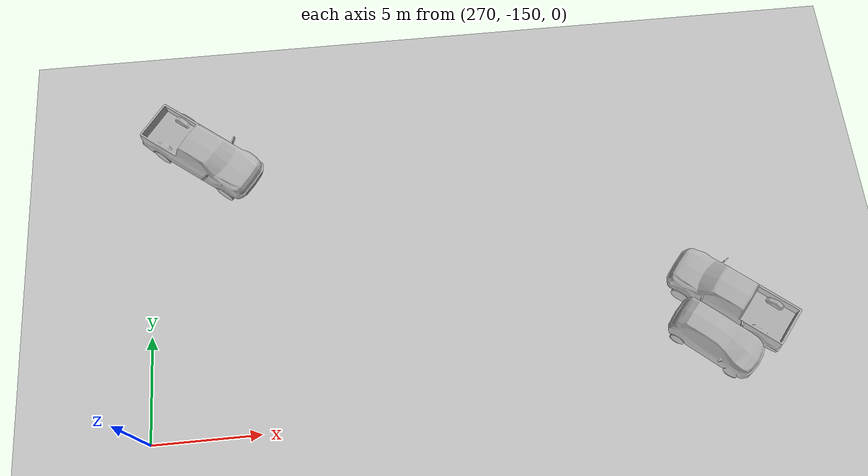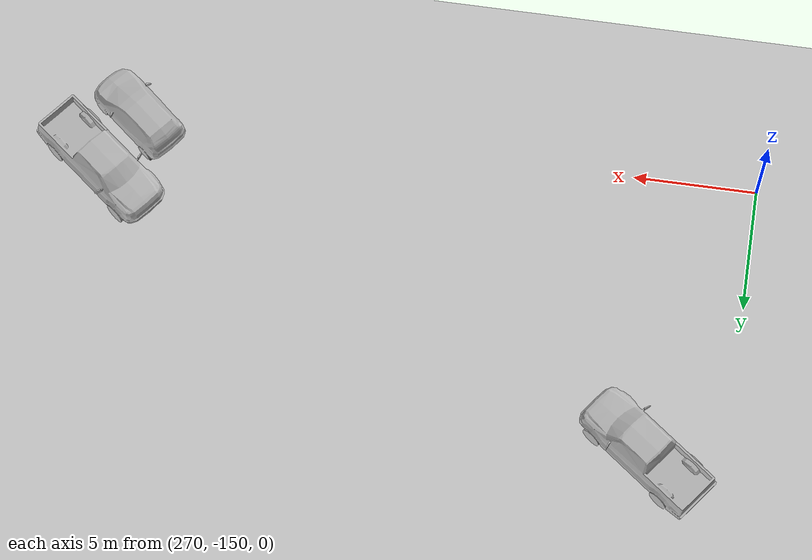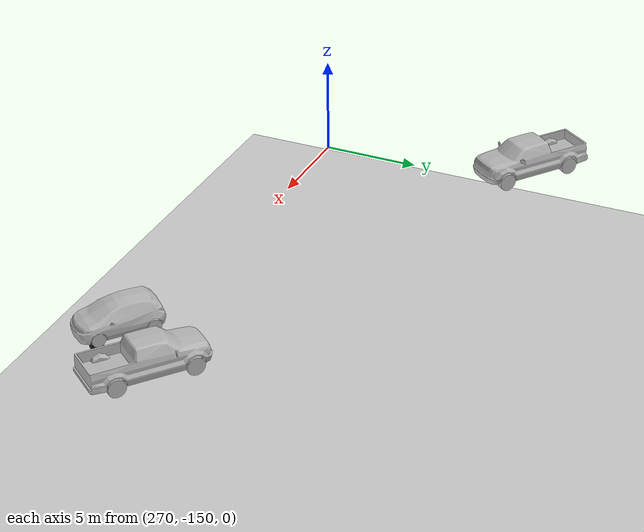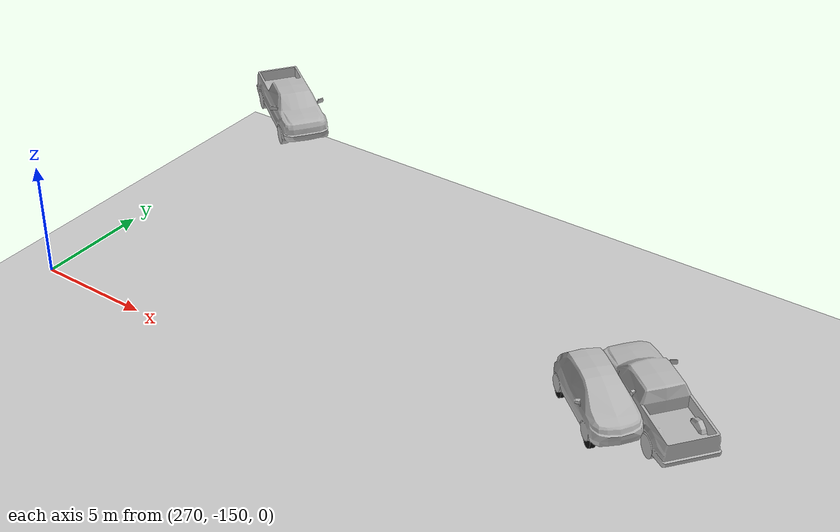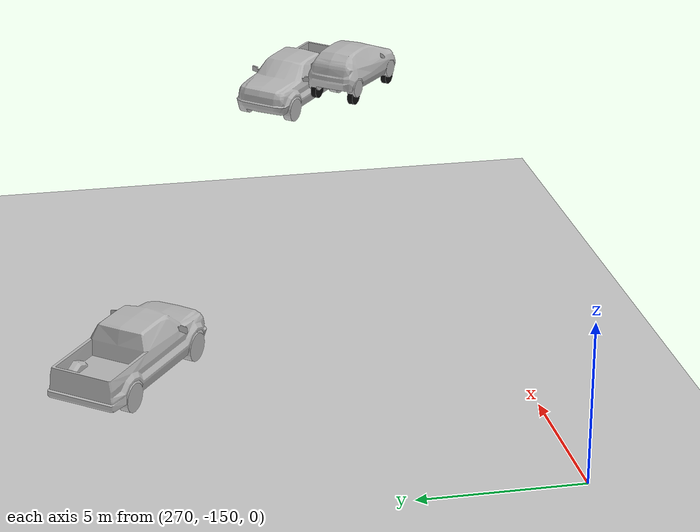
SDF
<sdf version="1.9">
 <world name="default">
  <physics type="ode">
   <max_step_size>0.004</max_step_size>
   <real_time_factor>1.0</real_time_factor>
   <real_time_update_rate>250</real_time_update_rate>
  </physics>
  <plugin name="gz::sim::systems::Physics" filename="gz-sim-physics-system"/>
  <plugin name="gz::sim::systems::UserCommands" filename="gz-sim-user-commands-system"/>
  <plugin name="gz::sim::systems::SceneBroadcaster" filename="gz-sim-scene-broadcaster-system"/>
  <plugin name="gz::sim::systems::Contact" filename="gz-sim-contact-system"/>
  <plugin name="gz::sim::systems::Imu" filename="gz-sim-imu-system"/>
  <plugin name="gz::sim::systems::AirPressure" filename="gz-sim-air-pressure-system"/>
  <plugin name="gz::sim::systems::Magnetometer" filename="gz-sim-magnetometer-system"/>
  <plugin name="gz::sim::systems::ApplyLinkWrench" filename="gz-sim-apply-link-wrench-system"/>
  <plugin name="gz::sim::systems::NavSat" filename="gz-sim-navsat-system"/>
  <plugin name="gz::sim::systems::Sensors" filename="gz-sim-sensors-system">
   <render_engine>ogre2</render_engine>
  </plugin>
  <plugin name="gz::sim::systems::Thermal" filename="gz-sim-thermal-system"/>
  <gravity>0 0 -9.8</gravity>
  <magnetic_field>6e-06 2.3e-05 -4.2e-05</magnetic_field>
  <atmosphere type="adiabatic"/>
  <scene>
   <grid>false</grid>
   <ambient>0.4 0.4 0.4 1</ambient>
   <background>0.7 0.7 0.7 1</background>
   <shadows>true</shadows>
  </scene>
  <model name="ground_plane">
   <static>true</static>
   <link name="link">
    <collision name="collision">
     <geometry><plane><normal>0 0 1</normal><size>1 1</size></plane></geometry>
    </collision>
    <visual name="visual">
     <geometry><plane><normal>0 0 1</normal><size>100 100</size></plane></geometry>
     <material>
      <ambient>0.8 0.8 0.8 1</ambient>
      <diffuse>0.8 0.8 0.8 1</diffuse>
      <specular>0.8 0.8 0.8 1</specular>
     </material>
    </visual>
    <inertial>
     <mass>1</mass>
     <inertia><ixx>1</ixx><ixy>0</ixy><ixz>0</ixz><iyy>1</iyy><iyz>0</iyz><izz>1</izz></inertia>
    </inertial>
   </link>
   <pose>0 0 -5 0 -0 0</pose>
  </model>
  <light name="sunUTC" type="directional">
   <pose>0 0 500 0 -0 0</pose>
   <intensity>1</intensity>
   <direction>0.001 0.625 -0.78</direction>
   <diffuse>0.904 0.904 0.904 1</diffuse>
   <specular>0.271 0.271 0.271 1</specular>
   <attenuation><range>2000</range><linear>0</linear><constant>1</constant><quadratic>0</quadratic></attenuation>
   <spot><inner_angle>0</inner_angle><outer_angle>0</outer_angle><falloff>0</falloff></spot>
  </light>
  <spherical_coordinates>
   <surface_model>EARTH_WGS84</surface_model>
   <world_frame_orientation>ENU</world_frame_orientation>
   <latitude_deg>47.397971057728974</latitude_deg>
   <longitude_deg>8.546163739800146</longitude_deg>
   <elevation>0</elevation>
  </spherical_coordinates>
  <include>
   <pose>294.55 -148.30 3.5 0 0 -0.7</pose>
   <uri>model://hatchback_blue</uri>
   <name>hatchback_blue_1</name>
  </include>
  <include><pose>273.43 -137.65 2.86 0.02 0 -0.65</pose><uri>model://pickup</uri><name>pickup_1</name></include>
  <include>
   <pose>295.96 -146.5 2.48 -0.019 -0.008 2.46</pose>
   <uri>model://pickup</uri>
   <name>pickup_2</name>
  </include>
 </world>
</sdf>

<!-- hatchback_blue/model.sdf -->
<sdf version="1.6">
  <model name="hatchback_blue">

    <!-- ==================== CHASSIS ==================== -->
    <link name="chassis">
      <inertial>
        <mass>800</mass>
        <pose>0.34 0 0.5 0 0 0</pose>
        <inertia>
          <ixx>200</ixx> <ixy>0</ixy> <ixz>0</ixz>
          <iyy>800</iyy> <iyz>0</iyz>
          <izz>800</izz>
        </inertia>
      </inertial>
      <visual name="visual">
        <pose>0 0 0 0 0 1.57079632679</pose>
        <geometry>
          <mesh>
            <scale>0.0254 0.0254 0.0254</scale>
            <uri>model://hatchback_blue/meshes/hatchback.obj</uri>
          </mesh>
        </geometry>
      </visual>
      <collision name="collision">
        <pose>0.34 0 0.5 0 0 0</pose>
        <geometry>
          <box><size>3.6 1.8 1.0</size></box>
        </geometry>
      </collision>

      <!-- Underbody engine/exhaust heat — visible in thermal as a hot
           region below the car. Thin box spanning the undercarriage. -->
      <visual name="underbody_heat">
        <pose>0.2 0 0.08 0 0 0</pose>
        <geometry>
          <box><size>2.8 1.4 0.05</size></box>
        </geometry>
        <material>
          <ambient>0.02 0.02 0.02 1</ambient>
          <diffuse>0.02 0.02 0.02 1</diffuse>
        </material>
        <transparency>1.0</transparency>
      </visual>
    </link>

    <!-- ==================== FORWARD-FACING CAMERA ==================== -->
    <link name="camera_link">
      <pose>1.2 0 1.2 0 0.3 0</pose>
      <inertial>
        <mass>0.1</mass>
        <inertia>
          <ixx>0.001</ixx><ixy>0</ixy><ixz>0</ixz>
          <iyy>0.001</iyy><iyz>0</iyz><izz>0.001</izz>
        </inertia>
      </inertial>
      <sensor name="front_camera" type="camera">
        <always_on>1</always_on>
        <update_rate>15</update_rate>
        <visualize>true</visualize>
        <topic>car/camera</topic>
        <camera>
          <horizontal_fov>2.094</horizontal_fov>
          <image>
            <width>640</width>
            <height>480</height>
            <format>R8G8B8</format>
          </image>
          <clip>
            <near>0.1</near>
            <far>200</far>
          </clip>
        </camera>
      </sensor>
    </link>

    <joint name="camera_joint" type="fixed">
      <parent>chassis</parent>
      <child>camera_link</child>
    </joint>

    <!-- ==================== STEERING LINKS ==================== -->
    <link name="front_left_steering_link">
      <pose>1.6 0.75 0 0 0 0</pose>
      <inertial>
        <mass>1.0</mass>
        <inertia>
          <ixx>0.01</ixx> <ixy>0</ixy> <ixz>0</ixz>
          <iyy>0.01</iyy> <iyz>0</iyz>
          <izz>0.01</izz>
        </inertia>
      </inertial>
    </link>

    <link name="front_right_steering_link">
      <pose>1.6 -0.75 0 0 0 0</pose>
      <inertial>
        <mass>1.0</mass>
        <inertia>
          <ixx>0.01</ixx> <ixy>0</ixy> <ixz>0</ixz>
          <iyy>0.01</iyy> <iyz>0</iyz>
          <izz>0.01</izz>
        </inertia>
      </inertial>
    </link>

    <!-- ==================== WHEEL LINKS ==================== -->
    <!-- Wheels now have visuals (dark cylinders) so they appear in
         the thermal camera as heat sources at ground level. -->

    <!-- Front Left Wheel -->
    <link name="front_left_wheel">
      <pose>1.6 0.75 0 -1.5707963 0 0</pose>
      <inertial>
        <mass>15</mass>
        <inertia>
          <ixx>0.5</ixx> <ixy>0</ixy> <ixz>0</ixz>
          <iyy>0.5</iyy> <iyz>0</iyz>
          <izz>0.8</izz>
        </inertia>
      </inertial>
      <visual name="tire_visual">
        <geometry>
          <cylinder><radius>0.30</radius><length>0.20</length></cylinder>
        </geometry>
        <material>
          <ambient>0.05 0.05 0.05 1</ambient>
          <diffuse>0.05 0.05 0.05 1</diffuse>
        </material>
      </visual>
      <collision name="collision">
        <geometry>
          <cylinder><radius>0.30</radius><length>0.20</length></cylinder>
        </geometry>
        <surface>
          <friction>
            <ode>
              <mu>2.0</mu>
              <mu2>1.5</mu2>
            </ode>
          </friction>
        </surface>
      </collision>
    </link>

    <!-- Front Right Wheel -->
    <link name="front_right_wheel">
      <pose>1.6 -0.75 0 -1.5707963 0 0</pose>
      <inertial>
        <mass>15</mass>
        <inertia>
          <ixx>0.5</ixx> <ixy>0</ixy> <ixz>0</ixz>
          <iyy>0.5</iyy> <iyz>0</iyz>
          <izz>0.8</izz>
        </inertia>
      </inertial>
      <visual name="tire_visual">
        <geometry>
          <cylinder><radius>0.30</radius><length>0.20</length></cylinder>
        </geometry>
        <material>
          <ambient>0.05 0.05 0.05 1</ambient>
          <diffuse>0.05 0.05 0.05 1</diffuse>
        </material>
      </visual>
      <collision name="collision">
        <geometry>
          <cylinder><radius>0.30</radius><length>0.20</length></cylinder>
        </geometry>
        <surface>
          <friction>
            <ode>
              <mu>2.0</mu>
              <mu2>1.5</mu2>
            </ode>
          </friction>
        </surface>
      </collision>
    </link>

    <!-- Rear Left Wheel -->
    <link name="rear_left_wheel">
      <pose>-1.0 0.75 0 -1.5707963 0 0</pose>
      <inertial>
        <mass>15</mass>
        <inertia>
          <ixx>0.5</ixx> <ixy>0</ixy> <ixz>0</ixz>
          <iyy>0.5</iyy> <iyz>0</iyz>
          <izz>0.8</izz>
        </inertia>
      </inertial>
      <visual name="tire_visual">
        <geometry>
          <cylinder><radius>0.30</radius><length>0.20</length></cylinder>
        </geometry>
        <material>
          <ambient>0.05 0.05 0.05 1</ambient>
          <diffuse>0.05 0.05 0.05 1</diffuse>
        </material>
      </visual>
      <collision name="collision">
        <geometry>
          <cylinder><radius>0.30</radius><length>0.20</length></cylinder>
        </geometry>
        <surface>
          <friction>
            <ode>
              <mu>2.0</mu>
              <mu2>1.5</mu2>
            </ode>
          </friction>
        </surface>
      </collision>
    </link>

    <!-- Rear Right Wheel -->
    <link name="rear_right_wheel">
      <pose>-1.0 -0.75 0 -1.5707963 0 0</pose>
      <inertial>
        <mass>15</mass>
        <inertia>
          <ixx>0.5</ixx> <ixy>0</ixy> <ixz>0</ixz>
          <iyy>0.5</iyy> <iyz>0</iyz>
          <izz>0.8</izz>
        </inertia>
      </inertial>
      <visual name="tire_visual">
        <geometry>
          <cylinder><radius>0.30</radius><length>0.20</length></cylinder>
        </geometry>
        <material>
          <ambient>0.05 0.05 0.05 1</ambient>
          <diffuse>0.05 0.05 0.05 1</diffuse>
        </material>
      </visual>
      <collision name="collision">
        <geometry>
          <cylinder><radius>0.30</radius><length>0.20</length></cylinder>
        </geometry>
        <surface>
          <friction>
            <ode>
              <mu>2.0</mu>
              <mu2>1.5</mu2>
            </ode>
          </friction>
        </surface>
      </collision>
    </link>

    <!-- ==================== STEERING JOINTS ==================== -->
    <joint name="front_left_steering_joint" type="revolute">
      <parent>chassis</parent>
      <child>front_left_steering_link</child>
      <axis>
        <xyz>0 0 1</xyz>
        <limit>
          <lower>-0.6</lower>
          <upper>0.6</upper>
          <effort>1e6</effort>
        </limit>
      </axis>
    </joint>

    <joint name="front_right_steering_joint" type="revolute">
      <parent>chassis</parent>
      <child>front_right_steering_link</child>
      <axis>
        <xyz>0 0 1</xyz>
        <limit>
          <lower>-0.6</lower>
          <upper>0.6</upper>
          <effort>1e6</effort>
        </limit>
      </axis>
    </joint>

    <!-- ==================== WHEEL JOINTS ==================== -->
    <joint name="front_left_wheel_joint" type="revolute">
      <parent>front_left_steering_link</parent>
      <child>front_left_wheel</child>
      <axis>
        <xyz>0 0 1</xyz>
        <limit>
          <lower>-1.79769e+308</lower>
          <upper>1.79769e+308</upper>
        </limit>
      </axis>
    </joint>

    <joint name="front_right_wheel_joint" type="revolute">
      <parent>front_right_steering_link</parent>
      <child>front_right_wheel</child>
      <axis>
        <xyz>0 0 1</xyz>
        <limit>
          <lower>-1.79769e+308</lower>
          <upper>1.79769e+308</upper>
        </limit>
      </axis>
    </joint>

    <joint name="rear_left_wheel_joint" type="revolute">
      <parent>chassis</parent>
      <child>rear_left_wheel</child>
      <axis>
        <xyz>0 0 1</xyz>
        <limit>
          <lower>-1.79769e+308</lower>
          <upper>1.79769e+308</upper>
        </limit>
      </axis>
    </joint>

    <joint name="rear_right_wheel_joint" type="revolute">
      <parent>chassis</parent>
      <child>rear_right_wheel</child>
      <axis>
        <xyz>0 0 1</xyz>
        <limit>
          <lower>-1.79769e+308</lower>
          <upper>1.79769e+308</upper>
        </limit>
      </axis>
    </joint>

    <!-- ==================== THERMAL TEMPERATURE ==================== -->
    <!-- Running car: ~45 C (318 K). Gazebo assigns this uniformly to
         all visuals (body mesh + tires + underbody heat plane).
         Limitation: can't do per-link gradient within one model. -->
    <plugin filename="gz-sim-thermal-system"
            name="gz::sim::systems::Thermal">
      <temperature>318</temperature>
    </plugin>

    <!-- ==================== ACKERMANN STEERING PLUGIN ==================== -->
    <plugin filename="gz-sim-ackermann-steering-system"
            name="gz::sim::systems::AckermannSteering">
      <left_joint>front_left_wheel_joint</left_joint>
      <left_joint>rear_left_wheel_joint</left_joint>
      <right_joint>front_right_wheel_joint</right_joint>
      <right_joint>rear_right_wheel_joint</right_joint>
      <left_steering_joint>front_left_steering_joint</left_steering_joint>
      <right_steering_joint>front_right_steering_joint</right_steering_joint>
      <wheel_separation>1.5</wheel_separation>
      <kingpin_width>1.3</kingpin_width>
      <wheel_base>2.6</wheel_base>
      <wheel_radius>0.30</wheel_radius>
      <steering_limit>0.6</steering_limit>
      <max_velocity>20.0</max_velocity>
      <max_acceleration>10.0</max_acceleration>
    </plugin>

  </model>
</sdf>

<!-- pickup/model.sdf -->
<sdf version="1.6">
  <model name="pickup">
    <static>true</static>
    <link name="link">
      <collision name="collision">
        <pose>0 0 0 0 0 -1.57079632679</pose>
        <geometry>
          <mesh>
            <uri>meshes/pickup.dae</uri>
          </mesh>
        </geometry>
      </collision>
      <visual name="visual">
        <pose>0 0 0 0 0 -1.57079632679</pose>
        <geometry>
          <mesh>
            <uri>meshes/pickup.dae</uri>
          </mesh>
        </geometry>
      </visual>
    </link>
    <plugin filename="gz-sim-thermal-system"
            name="gz::sim::systems::Thermal">
      <temperature>303</temperature>
    </plugin>
  </model>
</sdf>
